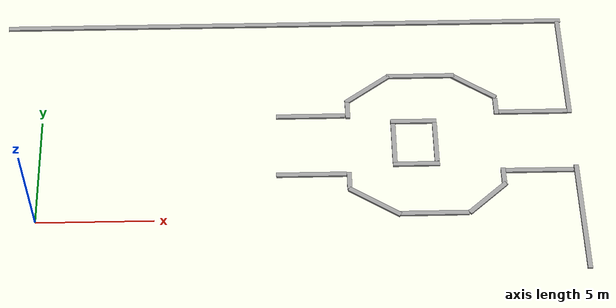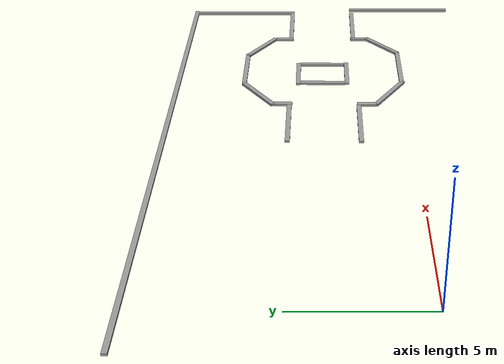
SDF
<sdf version="1.6">
 <model name="brick_box_3x1x3">
  <link name="link_1_clone_0_clone">
   <pose>10.6572 10.185 0.5 0 -0 0</pose>
   <inertial>
    <mass>1</mass>
    <inertia>
     <ixx>0.166667</ixx>
     <ixy>0</ixy>
     <ixz>0</ixz>
     <iyy>0.166667</iyy>
     <iyz>0</iyz>
     <izz>0.166667</izz>
    </inertia>
   </inertial>
   <visual name="visual">
    <pose>0 0 -0.5 0 -0 0</pose>
    <geometry><box><size>25 0.2 0.1</size></box></geometry>
    <material>
     <lighting>1</lighting>
     <script><uri>file://media/materials/scripts/gazebo.material</uri><name>Gazebo/Grey</name></script>
     <ambient>0.3 0.3 0.3 1</ambient>
     <diffuse>0.7 0.7 0.7 1</diffuse>
     <specular>0.01 0.01 0.01 1</specular>
     <emissive>0 0 0 1</emissive>
     <shader type="vertex"><normal_map>__default__</normal_map></shader>
    </material>
   </visual>
   <collision name="collision">
    <pose>0 0 -0.5 0 -0 0</pose>
    <geometry><box><size>25 0.2 0.2</size></box></geometry>
    <surface>
     <friction>
      <ode><mu>1</mu><mu2>1</mu2><fdir1>0 0 0</fdir1><slip1>0</slip1><slip2>0</slip2></ode>
      <torsional>
       <coefficient>1</coefficient>
       <patch_radius>0</patch_radius>
       <surface_radius>0</surface_radius>
       <use_patch_radius>1</use_patch_radius>
       <ode><slip>0</slip></ode>
      </torsional>
     </friction>
     <bounce><restitution_coefficient>0</restitution_coefficient><threshold>1e+06</threshold></bounce>
     <contact>
      <collide_without_contact>0</collide_without_contact>
      <collide_without_contact_bitmask>1</collide_without_contact_bitmask>
      <collide_bitmask>1</collide_bitmask>
      <ode>
       <soft_cfm>0</soft_cfm>
       <soft_erp>0.2</soft_erp>
       <kp>1e+13</kp>
       <kd>1</kd>
       <max_vel>0.01</max_vel>
       <min_depth>0</min_depth>
      </ode>
      <bullet>
       <split_impulse>1</split_impulse>
       <split_impulse_penetration_threshold>-0.01</split_impulse_penetration_threshold>
       <soft_cfm>0</soft_cfm>
       <soft_erp>0.2</soft_erp>
       <kp>1e+13</kp>
       <kd>1</kd>
      </bullet>
     </contact>
    </surface>
   </collision>
  </link>
  <link name="link_1_clone_1">
   <pose>22.9433 -0.208958 0.688101 0 -0 0</pose>
   <inertial>
    <mass>1</mass>
    <inertia>
     <ixx>0.166667</ixx>
     <ixy>0</ixy>
     <ixz>0</ixz>
     <iyy>0.166667</iyy>
     <iyz>0</iyz>
     <izz>0.166667</izz>
    </inertia>
   </inertial>
   <visual name="visual">
    <pose>0 0 -0.5 0 -0 0</pose>
    <geometry><box><size>0.2 5 0.1</size></box></geometry>
    <material>
     <lighting>1</lighting>
     <script><uri>file://media/materials/scripts/gazebo.material</uri><name>Gazebo/Grey</name></script>
     <ambient>0.3 0.3 0.3 1</ambient>
     <diffuse>0.7 0.7 0.7 1</diffuse>
     <specular>0.01 0.01 0.01 1</specular>
     <emissive>0 0 0 1</emissive>
     <shader type="vertex"><normal_map>__default__</normal_map></shader>
    </material>
   </visual>
   <collision name="collision">
    <pose>0 0 -0.5 0 -0 0</pose>
    <geometry><box><size>0.1 5 0.2</size></box></geometry>
    <surface>
     <friction>
      <ode><mu>1</mu><mu2>1</mu2><fdir1>0 0 0</fdir1><slip1>0</slip1><slip2>0</slip2></ode>
      <torsional>
       <coefficient>1</coefficient>
       <patch_radius>0</patch_radius>
       <surface_radius>0</surface_radius>
       <use_patch_radius>1</use_patch_radius>
       <ode><slip>0</slip></ode>
      </torsional>
     </friction>
     <bounce><restitution_coefficient>0</restitution_coefficient><threshold>1e+06</threshold></bounce>
     <contact>
      <collide_without_contact>0</collide_without_contact>
      <collide_without_contact_bitmask>1</collide_without_contact_bitmask>
      <collide_bitmask>1</collide_bitmask>
      <ode>
       <soft_cfm>0</soft_cfm>
       <soft_erp>0.2</soft_erp>
       <kp>1e+13</kp>
       <kd>1</kd>
       <max_vel>0.01</max_vel>
       <min_depth>0</min_depth>
      </ode>
      <bullet>
       <split_impulse>1</split_impulse>
       <split_impulse_penetration_threshold>-0.01</split_impulse_penetration_threshold>
       <soft_cfm>0</soft_cfm>
       <soft_erp>0.2</soft_erp>
       <kp>1e+13</kp>
       <kd>1</kd>
      </bullet>
     </contact>
    </surface>
   </collision>
  </link>
  <link name="link_1_clone_2">
   <pose>23.0117 7.63499 0.5 0 -0 0</pose>
   <inertial>
    <mass>1</mass>
    <inertia>
     <ixx>0.166667</ixx>
     <ixy>0</ixy>
     <ixz>0</ixz>
     <iyy>0.166667</iyy>
     <iyz>0</iyz>
     <izz>0.166667</izz>
    </inertia>
   </inertial>
   <visual name="visual">
    <pose>0 0 -0.5 0 -0 0</pose>
    <geometry><box><size>0.2 5 0.1</size></box></geometry>
    <material>
     <lighting>1</lighting>
     <script><uri>file://media/materials/scripts/gazebo.material</uri><name>Gazebo/Grey</name></script>
     <ambient>0.3 0.3 0.3 1</ambient>
     <diffuse>0.7 0.7 0.7 1</diffuse>
     <specular>0.01 0.01 0.01 1</specular>
     <emissive>0 0 0 1</emissive>
     <shader type="vertex"><normal_map>__default__</normal_map></shader>
    </material>
   </visual>
   <collision name="collision">
    <pose>0 0 -0.5 0 -0 0</pose>
    <geometry><box><size>0.1 5 0.2</size></box></geometry>
    <surface>
     <friction>
      <ode><mu>1</mu><mu2>1</mu2><fdir1>0 0 0</fdir1><slip1>0</slip1><slip2>0</slip2></ode>
      <torsional>
       <coefficient>1</coefficient>
       <patch_radius>0</patch_radius>
       <surface_radius>0</surface_radius>
       <use_patch_radius>1</use_patch_radius>
       <ode><slip>0</slip></ode>
      </torsional>
     </friction>
     <bounce><restitution_coefficient>0</restitution_coefficient><threshold>1e+06</threshold></bounce>
     <contact>
      <collide_without_contact>0</collide_without_contact>
      <collide_without_contact_bitmask>1</collide_without_contact_bitmask>
      <collide_bitmask>1</collide_bitmask>
      <ode>
       <soft_cfm>0</soft_cfm>
       <soft_erp>0.2</soft_erp>
       <kp>1e+13</kp>
       <kd>1</kd>
       <max_vel>0.01</max_vel>
       <min_depth>0</min_depth>
      </ode>
      <bullet>
       <split_impulse>1</split_impulse>
       <split_impulse_penetration_threshold>-0.01</split_impulse_penetration_threshold>
       <soft_cfm>0</soft_cfm>
       <soft_erp>0.2</soft_erp>
       <kp>1e+13</kp>
       <kd>1</kd>
      </bullet>
     </contact>
    </surface>
   </collision>
  </link>
  <link name="link_1_clone_3_clone_0">
   <pose>21.4333 2.1957 0.5 0 -0 0</pose>
   <inertial>
    <mass>1</mass>
    <inertia>
     <ixx>0.166667</ixx>
     <ixy>0</ixy>
     <ixz>0</ixz>
     <iyy>0.166667</iyy>
     <iyz>0</iyz>
     <izz>0.166667</izz>
    </inertia>
   </inertial>
   <visual name="visual">
    <pose>0 0 -0.5 0 -0 0</pose>
    <geometry><box><size>3 0.2 0.1</size></box></geometry>
    <material>
     <lighting>1</lighting>
     <script><uri>file://media/materials/scripts/gazebo.material</uri><name>Gazebo/Grey</name></script>
     <ambient>0.3 0.3 0.3 1</ambient>
     <diffuse>0.7 0.7 0.7 1</diffuse>
     <specular>0.01 0.01 0.01 1</specular>
     <emissive>0 0 0 1</emissive>
     <shader type="vertex"><normal_map>__default__</normal_map></shader>
    </material>
   </visual>
   <collision name="collision">
    <pose>0 0 -0.5 0 -0 0</pose>
    <geometry><box><size>3 0.2 0.2</size></box></geometry>
    <surface>
     <friction>
      <ode><mu>1</mu><mu2>1</mu2><fdir1>0 0 0</fdir1><slip1>0</slip1><slip2>0</slip2></ode>
      <torsional>
       <coefficient>1</coefficient>
       <patch_radius>0</patch_radius>
       <surface_radius>0</surface_radius>
       <use_patch_radius>1</use_patch_radius>
       <ode><slip>0</slip></ode>
      </torsional>
     </friction>
     <bounce><restitution_coefficient>0</restitution_coefficient><threshold>1e+06</threshold></bounce>
     <contact>
      <collide_without_contact>0</collide_without_contact>
      <collide_without_contact_bitmask>1</collide_without_contact_bitmask>
      <collide_bitmask>1</collide_bitmask>
      <ode>
       <soft_cfm>0</soft_cfm>
       <soft_erp>0.2</soft_erp>
       <kp>1e+13</kp>
       <kd>1</kd>
       <max_vel>0.01</max_vel>
       <min_depth>0</min_depth>
      </ode>
      <bullet>
       <split_impulse>1</split_impulse>
       <split_impulse_penetration_threshold>-0.01</split_impulse_penetration_threshold>
       <soft_cfm>0</soft_cfm>
       <soft_erp>0.2</soft_erp>
       <kp>1e+13</kp>
       <kd>1</kd>
      </bullet>
     </contact>
    </surface>
   </collision>
  </link>
  <link name="link_1_clone_3_clone_1">
   <pose>21.421 5.22151 0.5 0 -0 0</pose>
   <inertial>
    <mass>1</mass>
    <inertia>
     <ixx>0.166667</ixx>
     <ixy>0</ixy>
     <ixz>0</ixz>
     <iyy>0.166667</iyy>
     <iyz>0</iyz>
     <izz>0.166667</izz>
    </inertia>
   </inertial>
   <visual name="visual">
    <pose>0 0 -0.5 0 -0 0</pose>
    <geometry><box><size>3 0.2 0.1</size></box></geometry>
    <material>
     <lighting>1</lighting>
     <script><uri>file://media/materials/scripts/gazebo.material</uri><name>Gazebo/Grey</name></script>
     <ambient>0.3 0.3 0.3 1</ambient>
     <diffuse>0.7 0.7 0.7 1</diffuse>
     <specular>0.01 0.01 0.01 1</specular>
     <emissive>0 0 0 1</emissive>
     <shader type="vertex"><normal_map>__default__</normal_map></shader>
    </material>
   </visual>
   <collision name="collision">
    <pose>0 0 -0.5 0 -0 0</pose>
    <geometry><box><size>3 0.2 0.2</size></box></geometry>
    <surface>
     <friction>
      <ode><mu>1</mu><mu2>1</mu2><fdir1>0 0 0</fdir1><slip1>0</slip1><slip2>0</slip2></ode>
      <torsional>
       <coefficient>1</coefficient>
       <patch_radius>0</patch_radius>
       <surface_radius>0</surface_radius>
       <use_patch_radius>1</use_patch_radius>
       <ode><slip>0</slip></ode>
      </torsional>
     </friction>
     <bounce><restitution_coefficient>0</restitution_coefficient><threshold>1e+06</threshold></bounce>
     <contact>
      <collide_without_contact>0</collide_without_contact>
      <collide_without_contact_bitmask>1</collide_without_contact_bitmask>
      <collide_bitmask>1</collide_bitmask>
      <ode>
       <soft_cfm>0</soft_cfm>
       <soft_erp>0.2</soft_erp>
       <kp>1e+13</kp>
       <kd>1</kd>
       <max_vel>0.01</max_vel>
       <min_depth>0</min_depth>
      </ode>
      <bullet>
       <split_impulse>1</split_impulse>
       <split_impulse_penetration_threshold>-0.01</split_impulse_penetration_threshold>
       <soft_cfm>0</soft_cfm>
       <soft_erp>0.2</soft_erp>
       <kp>1e+13</kp>
       <kd>1</kd>
      </bullet>
     </contact>
    </surface>
   </collision>
  </link>
  <link name="link_1_clone_3_clone_10_clone_1_clone_2">
   <pose>13.2467 1.79727 0.5 0 0 -1.56821</pose>
   <inertial>
    <mass>0.239353</mass>
    <inertia>
     <ixx>0.0406036</ixx>
     <ixy>0</ixy>
     <ixz>0</ixz>
     <iyy>0.0210496</iyy>
     <iyz>0</iyz>
     <izz>0.0217608</izz>
    </inertia>
   </inertial>
   <visual name="visual">
    <pose>0 0 -0.5 0 -0 0</pose>
    <geometry><box><size>0.823187 0.203535 0.1</size></box></geometry>
    <material>
     <lighting>1</lighting>
     <script><uri>file://media/materials/scripts/gazebo.material</uri><name>Gazebo/Grey</name></script>
     <ambient>0.3 0.3 0.3 1</ambient>
     <diffuse>0.7 0.7 0.7 1</diffuse>
     <specular>0.01 0.01 0.01 1</specular>
     <emissive>0 0 0 1</emissive>
     <shader type="vertex"><normal_map>__default__</normal_map></shader>
    </material>
   </visual>
   <collision name="collision">
    <pose>0 0 -0.5 0 -0 0</pose>
    <geometry><box><size>0.823187 0.203535 0.2</size></box></geometry>
    <surface>
     <friction>
      <ode><mu>1</mu><mu2>1</mu2><fdir1>0 0 0</fdir1><slip1>0</slip1><slip2>0</slip2></ode>
      <torsional>
       <coefficient>1</coefficient>
       <patch_radius>0</patch_radius>
       <surface_radius>0</surface_radius>
       <use_patch_radius>1</use_patch_radius>
       <ode><slip>0</slip></ode>
      </torsional>
     </friction>
     <bounce><restitution_coefficient>0</restitution_coefficient><threshold>1e+06</threshold></bounce>
     <contact>
      <collide_without_contact>0</collide_without_contact>
      <collide_without_contact_bitmask>1</collide_without_contact_bitmask>
      <collide_bitmask>1</collide_bitmask>
      <ode>
       <soft_cfm>0</soft_cfm>
       <soft_erp>0.2</soft_erp>
       <kp>1e+13</kp>
       <kd>1</kd>
       <max_vel>0.01</max_vel>
       <min_depth>0</min_depth>
      </ode>
      <bullet>
       <split_impulse>1</split_impulse>
       <split_impulse_penetration_threshold>-0.01</split_impulse_penetration_threshold>
       <soft_cfm>0</soft_cfm>
       <soft_erp>0.2</soft_erp>
       <kp>1e+13</kp>
       <kd>1</kd>
      </bullet>
     </contact>
    </surface>
   </collision>
  </link>
  <link name="link_1_clone_3_clone_10_clone_1_clone_3">
   <pose>13.302 5.42831 0.5 0 0 -1.56821</pose>
   <inertial>
    <mass>0.239353</mass>
    <inertia>
     <ixx>0.0406036</ixx>
     <ixy>0</ixy>
     <ixz>0</ixz>
     <iyy>0.0210496</iyy>
     <iyz>0</iyz>
     <izz>0.0217608</izz>
    </inertia>
   </inertial>
   <visual name="visual">
    <pose>0 0 -0.5 0 -0 0</pose>
    <geometry><box><size>0.823187 0.203535 0.1</size></box></geometry>
    <material>
     <lighting>1</lighting>
     <script><uri>file://media/materials/scripts/gazebo.material</uri><name>Gazebo/Grey</name></script>
     <ambient>0.3 0.3 0.3 1</ambient>
     <diffuse>0.7 0.7 0.7 1</diffuse>
     <specular>0.01 0.01 0.01 1</specular>
     <emissive>0 0 0 1</emissive>
     <shader type="vertex"><normal_map>__default__</normal_map></shader>
    </material>
   </visual>
   <collision name="collision">
    <pose>0 0 -0.5 0 -0 0</pose>
    <geometry><box><size>0.823187 0.203535 0.2</size></box></geometry>
    <surface>
     <friction>
      <ode><mu>1</mu><mu2>1</mu2><fdir1>0 0 0</fdir1><slip1>0</slip1><slip2>0</slip2></ode>
      <torsional>
       <coefficient>1</coefficient>
       <patch_radius>0</patch_radius>
       <surface_radius>0</surface_radius>
       <use_patch_radius>1</use_patch_radius>
       <ode><slip>0</slip></ode>
      </torsional>
     </friction>
     <bounce><restitution_coefficient>0</restitution_coefficient><threshold>1e+06</threshold></bounce>
     <contact>
      <collide_without_contact>0</collide_without_contact>
      <collide_without_contact_bitmask>1</collide_without_contact_bitmask>
      <collide_bitmask>1</collide_bitmask>
      <ode>
       <soft_cfm>0</soft_cfm>
       <soft_erp>0.2</soft_erp>
       <kp>1e+13</kp>
       <kd>1</kd>
       <max_vel>0.01</max_vel>
       <min_depth>0</min_depth>
      </ode>
      <bullet>
       <split_impulse>1</split_impulse>
       <split_impulse_penetration_threshold>-0.01</split_impulse_penetration_threshold>
       <soft_cfm>0</soft_cfm>
       <soft_erp>0.2</soft_erp>
       <kp>1e+13</kp>
       <kd>1</kd>
      </bullet>
     </contact>
    </surface>
   </collision>
  </link>
  <link name="link_1_clone_3_clone_10_clone_1_clone_4">
   <pose>19.8376 1.90733 0.5 0 0 -1.56821</pose>
   <inertial>
    <mass>0.239353</mass>
    <inertia>
     <ixx>0.0406036</ixx>
     <ixy>0</ixy>
     <ixz>0</ixz>
     <iyy>0.0210496</iyy>
     <iyz>0</iyz>
     <izz>0.0217608</izz>
    </inertia>
   </inertial>
   <visual name="visual">
    <pose>0 0 -0.5 0 -0 0</pose>
    <geometry><box><size>0.823187 0.203535 0.1</size></box></geometry>
    <material>
     <lighting>1</lighting>
     <script><uri>file://media/materials/scripts/gazebo.material</uri><name>Gazebo/Grey</name></script>
     <ambient>0.3 0.3 0.3 1</ambient>
     <diffuse>0.7 0.7 0.7 1</diffuse>
     <specular>0.01 0.01 0.01 1</specular>
     <emissive>0 0 0 1</emissive>
     <shader type="vertex"><normal_map>__default__</normal_map></shader>
    </material>
   </visual>
   <collision name="collision">
    <pose>0 0 -0.5 0 -0 0</pose>
    <geometry><box><size>0.823187 0.203535 0.2</size></box></geometry>
    <surface>
     <friction>
      <ode><mu>1</mu><mu2>1</mu2><fdir1>0 0 0</fdir1><slip1>0</slip1><slip2>0</slip2></ode>
      <torsional>
       <coefficient>1</coefficient>
       <patch_radius>0</patch_radius>
       <surface_radius>0</surface_radius>
       <use_patch_radius>1</use_patch_radius>
       <ode><slip>0</slip></ode>
      </torsional>
     </friction>
     <bounce><restitution_coefficient>0</restitution_coefficient><threshold>1e+06</threshold></bounce>
     <contact>
      <collide_without_contact>0</collide_without_contact>
      <collide_without_contact_bitmask>1</collide_without_contact_bitmask>
      <collide_bitmask>1</collide_bitmask>
      <ode>
       <soft_cfm>0</soft_cfm>
       <soft_erp>0.2</soft_erp>
       <kp>1e+13</kp>
       <kd>1</kd>
       <max_vel>0.01</max_vel>
       <min_depth>0</min_depth>
      </ode>
      <bullet>
       <split_impulse>1</split_impulse>
       <split_impulse_penetration_threshold>-0.01</split_impulse_penetration_threshold>
       <soft_cfm>0</soft_cfm>
       <soft_erp>0.2</soft_erp>
       <kp>1e+13</kp>
       <kd>1</kd>
      </bullet>
     </contact>
    </surface>
   </collision>
  </link>
  <link name="link_1_clone_3_clone_10_clone_1_clone_5">
   <pose>19.8123 5.5335 0.5 0 0 -1.56821</pose>
   <inertial>
    <mass>0.239353</mass>
    <inertia>
     <ixx>0.0406036</ixx>
     <ixy>0</ixy>
     <ixz>0</ixz>
     <iyy>0.0210496</iyy>
     <iyz>0</iyz>
     <izz>0.0217608</izz>
    </inertia>
   </inertial>
   <visual name="visual">
    <pose>0 0 -0.5 0 -0 0</pose>
    <geometry><box><size>0.823187 0.203535 0.1</size></box></geometry>
    <material>
     <lighting>1</lighting>
     <script><uri>file://media/materials/scripts/gazebo.material</uri><name>Gazebo/Grey</name></script>
     <ambient>0.3 0.3 0.3 1</ambient>
     <diffuse>0.7 0.7 0.7 1</diffuse>
     <specular>0.01 0.01 0.01 1</specular>
     <emissive>0 0 0 1</emissive>
     <shader type="vertex"><normal_map>__default__</normal_map></shader>
    </material>
   </visual>
   <collision name="collision">
    <pose>0 0 -0.5 0 -0 0</pose>
    <geometry><box><size>0.823187 0.203535 0.2</size></box></geometry>
    <surface>
     <friction>
      <ode><mu>1</mu><mu2>1</mu2><fdir1>0 0 0</fdir1><slip1>0</slip1><slip2>0</slip2></ode>
      <torsional>
       <coefficient>1</coefficient>
       <patch_radius>0</patch_radius>
       <surface_radius>0</surface_radius>
       <use_patch_radius>1</use_patch_radius>
       <ode><slip>0</slip></ode>
      </torsional>
     </friction>
     <bounce><restitution_coefficient>0</restitution_coefficient><threshold>1e+06</threshold></bounce>
     <contact>
      <collide_without_contact>0</collide_without_contact>
      <collide_without_contact_bitmask>1</collide_without_contact_bitmask>
      <collide_bitmask>1</collide_bitmask>
      <ode>
       <soft_cfm>0</soft_cfm>
       <soft_erp>0.2</soft_erp>
       <kp>1e+13</kp>
       <kd>1</kd>
       <max_vel>0.01</max_vel>
       <min_depth>0</min_depth>
      </ode>
      <bullet>
       <split_impulse>1</split_impulse>
       <split_impulse_penetration_threshold>-0.01</split_impulse_penetration_threshold>
       <soft_cfm>0</soft_cfm>
       <soft_erp>0.2</soft_erp>
       <kp>1e+13</kp>
       <kd>1</kd>
      </bullet>
     </contact>
    </surface>
   </collision>
  </link>
  <link name="link_1_clone_3_clone_10_clone_4">
   <pose>18.8978 6.62107 0.5 0 0 -0.579619</pose>
   <inertial>
    <mass>0.66633</mass>
    <inertia>
     <ixx>0.113036</ixx>
     <ixy>0</ixy>
     <ixz>0</ixz>
     <iyy>0.0793326</iyy>
     <iyz>0</iyz>
     <izz>0.0813132</izz>
    </inertia>
   </inertial>
   <visual name="visual">
    <pose>0 0 -0.5 0 -0 0</pose>
    <geometry><box><size>2.29164 0.203535 0.1</size></box></geometry>
    <material>
     <lighting>1</lighting>
     <script><uri>file://media/materials/scripts/gazebo.material</uri><name>Gazebo/Grey</name></script>
     <ambient>0.3 0.3 0.3 1</ambient>
     <diffuse>0.7 0.7 0.7 1</diffuse>
     <specular>0.01 0.01 0.01 1</specular>
     <emissive>0 0 0 1</emissive>
     <shader type="vertex"><normal_map>__default__</normal_map></shader>
    </material>
   </visual>
   <collision name="collision">
    <pose>0 0 -0.5 0 -0 0</pose>
    <geometry><box><size>2.29164 0.203535 0.2</size></box></geometry>
    <surface>
     <friction>
      <ode><mu>1</mu><mu2>1</mu2><fdir1>0 0 0</fdir1><slip1>0</slip1><slip2>0</slip2></ode>
      <torsional>
       <coefficient>1</coefficient>
       <patch_radius>0</patch_radius>
       <surface_radius>0</surface_radius>
       <use_patch_radius>1</use_patch_radius>
       <ode><slip>0</slip></ode>
      </torsional>
     </friction>
     <bounce><restitution_coefficient>0</restitution_coefficient><threshold>1e+06</threshold></bounce>
     <contact>
      <collide_without_contact>0</collide_without_contact>
      <collide_without_contact_bitmask>1</collide_without_contact_bitmask>
      <collide_bitmask>1</collide_bitmask>
      <ode>
       <soft_cfm>0</soft_cfm>
       <soft_erp>0.2</soft_erp>
       <kp>1e+13</kp>
       <kd>1</kd>
       <max_vel>0.01</max_vel>
       <min_depth>0</min_depth>
      </ode>
      <bullet>
       <split_impulse>1</split_impulse>
       <split_impulse_penetration_threshold>-0.01</split_impulse_penetration_threshold>
       <soft_cfm>0</soft_cfm>
       <soft_erp>0.2</soft_erp>
       <kp>1e+13</kp>
       <kd>1</kd>
      </bullet>
     </contact>
    </surface>
   </collision>
  </link>
  <link name="link_1_clone_3_clone_10_clone_4_clone">
   <pose>14.2781 0.747531 0.5 0 0 -0.55659</pose>
   <inertial>
    <mass>0.726749</mass>
    <inertia>
     <ixx>0.123285</ixx>
     <ixy>0</ixy>
     <ixz>0</ixz>
     <iyy>0.0914481</iyy>
     <iyz>0</iyz>
     <izz>0.0936075</izz>
    </inertia>
   </inertial>
   <visual name="visual">
    <pose>0 0 -0.5 0 -0 0</pose>
    <geometry><box><size>2.49943 0.203535 0.1</size></box></geometry>
    <material>
     <lighting>1</lighting>
     <script><uri>file://media/materials/scripts/gazebo.material</uri><name>Gazebo/Grey</name></script>
     <ambient>0.3 0.3 0.3 1</ambient>
     <diffuse>0.7 0.7 0.7 1</diffuse>
     <specular>0.01 0.01 0.01 1</specular>
     <emissive>0 0 0 1</emissive>
     <shader type="vertex"><normal_map>__default__</normal_map></shader>
    </material>
   </visual>
   <collision name="collision">
    <pose>0 0 -0.5 0 -0 0</pose>
    <geometry><box><size>2.49943 0.203535 0.2</size></box></geometry>
    <surface>
     <friction>
      <ode><mu>1</mu><mu2>1</mu2><fdir1>0 0 0</fdir1><slip1>0</slip1><slip2>0</slip2></ode>
      <torsional>
       <coefficient>1</coefficient>
       <patch_radius>0</patch_radius>
       <surface_radius>0</surface_radius>
       <use_patch_radius>1</use_patch_radius>
       <ode><slip>0</slip></ode>
      </torsional>
     </friction>
     <bounce><restitution_coefficient>0</restitution_coefficient><threshold>1e+06</threshold></bounce>
     <contact>
      <collide_without_contact>0</collide_without_contact>
      <collide_without_contact_bitmask>1</collide_without_contact_bitmask>
      <collide_bitmask>1</collide_bitmask>
      <ode>
       <soft_cfm>0</soft_cfm>
       <soft_erp>0.2</soft_erp>
       <kp>1e+13</kp>
       <kd>1</kd>
       <max_vel>0.01</max_vel>
       <min_depth>0</min_depth>
      </ode>
      <bullet>
       <split_impulse>1</split_impulse>
       <split_impulse_penetration_threshold>-0.01</split_impulse_penetration_threshold>
       <soft_cfm>0</soft_cfm>
       <soft_erp>0.2</soft_erp>
       <kp>1e+13</kp>
       <kd>1</kd>
      </bullet>
     </contact>
    </surface>
   </collision>
  </link>
  <link name="link_1_clone_3_clone_10_clone_4_clone_clone">
   <pose>14.2088 6.53336 0.5 0 0 -2.52567</pose>
   <inertial>
    <mass>0.693051</mass>
    <inertia>
     <ixx>0.117568</ixx>
     <ixy>0</ixy>
     <ixz>0</ixz>
     <iyy>0.0845397</iyy>
     <iyz>0</iyz>
     <izz>0.086599</izz>
    </inertia>
   </inertial>
   <visual name="visual">
    <pose>0 0 -0.5 0 -0 0</pose>
    <geometry><box><size>2.38354 0.203535 0.1</size></box></geometry>
    <material>
     <lighting>1</lighting>
     <script><uri>file://media/materials/scripts/gazebo.material</uri><name>Gazebo/Grey</name></script>
     <ambient>0.3 0.3 0.3 1</ambient>
     <diffuse>0.7 0.7 0.7 1</diffuse>
     <specular>0.01 0.01 0.01 1</specular>
     <emissive>0 0 0 1</emissive>
     <shader type="vertex"><normal_map>__default__</normal_map></shader>
    </material>
   </visual>
   <collision name="collision">
    <pose>0 0 -0.5 0 -0 0</pose>
    <geometry><box><size>2.38354 0.203535 0.2</size></box></geometry>
    <surface>
     <friction>
      <ode><mu>1</mu><mu2>1</mu2><fdir1>0 0 0</fdir1><slip1>0</slip1><slip2>0</slip2></ode>
      <torsional>
       <coefficient>1</coefficient>
       <patch_radius>0</patch_radius>
       <surface_radius>0</surface_radius>
       <use_patch_radius>1</use_patch_radius>
       <ode><slip>0</slip></ode>
      </torsional>
     </friction>
     <bounce><restitution_coefficient>0</restitution_coefficient><threshold>1e+06</threshold></bounce>
     <contact>
      <collide_without_contact>0</collide_without_contact>
      <collide_without_contact_bitmask>1</collide_without_contact_bitmask>
      <collide_bitmask>1</collide_bitmask>
      <ode>
       <soft_cfm>0</soft_cfm>
       <soft_erp>0.2</soft_erp>
       <kp>1e+13</kp>
       <kd>1</kd>
       <max_vel>0.01</max_vel>
       <min_depth>0</min_depth>
      </ode>
      <bullet>
       <split_impulse>1</split_impulse>
       <split_impulse_penetration_threshold>-0.01</split_impulse_penetration_threshold>
       <soft_cfm>0</soft_cfm>
       <soft_erp>0.2</soft_erp>
       <kp>1e+13</kp>
       <kd>1</kd>
      </bullet>
     </contact>
    </surface>
   </collision>
  </link>
  <link name="link_1_clone_3_clone_10_clone_4_clone_clone_clone">
   <pose>19.0759 0.851415 0.5 0 0 -2.43222</pose>
   <inertial>
    <mass>0.638044</mass>
    <inertia>
     <ixx>0.108237</ixx>
     <ixy>0</ixy>
     <ixz>0</ixz>
     <iyy>0.0740707</iyy>
     <iyz>0</iyz>
     <izz>0.0759667</izz>
    </inertia>
   </inertial>
   <visual name="visual">
    <pose>0 0 -0.5 0 -0 0</pose>
    <geometry><box><size>2.19436 0.203535 0.1</size></box></geometry>
    <material>
     <lighting>1</lighting>
     <script><uri>file://media/materials/scripts/gazebo.material</uri><name>Gazebo/Grey</name></script>
     <ambient>0.3 0.3 0.3 1</ambient>
     <diffuse>0.7 0.7 0.7 1</diffuse>
     <specular>0.01 0.01 0.01 1</specular>
     <emissive>0 0 0 1</emissive>
     <shader type="vertex"><normal_map>__default__</normal_map></shader>
    </material>
   </visual>
   <collision name="collision">
    <pose>0 0 -0.5 0 -0 0</pose>
    <geometry><box><size>2.19436 0.203535 0.2</size></box></geometry>
    <surface>
     <friction>
      <ode><mu>1</mu><mu2>1</mu2><fdir1>0 0 0</fdir1><slip1>0</slip1><slip2>0</slip2></ode>
      <torsional>
       <coefficient>1</coefficient>
       <patch_radius>0</patch_radius>
       <surface_radius>0</surface_radius>
       <use_patch_radius>1</use_patch_radius>
       <ode><slip>0</slip></ode>
      </torsional>
     </friction>
     <bounce><restitution_coefficient>0</restitution_coefficient><threshold>1e+06</threshold></bounce>
     <contact>
      <collide_without_contact>0</collide_without_contact>
      <collide_without_contact_bitmask>1</collide_without_contact_bitmask>
      <collide_bitmask>1</collide_bitmask>
      <ode>
       <soft_cfm>0</soft_cfm>
       <soft_erp>0.2</soft_erp>
       <kp>1e+13</kp>
       <kd>1</kd>
       <max_vel>0.01</max_vel>
       <min_depth>0</min_depth>
      </ode>
      <bullet>
       <split_impulse>1</split_impulse>
       <split_impulse_penetration_threshold>-0.01</split_impulse_penetration_threshold>
       <soft_cfm>0</soft_cfm>
       <soft_erp>0.2</soft_erp>
       <kp>1e+13</kp>
       <kd>1</kd>
      </bullet>
     </contact>
    </surface>
   </collision>
  </link>
  <link name="link_1_clone_3_clone_4">
   <pose>11.6739 5.14783 0.5 0 -0 0</pose>
   <inertial>
    <mass>1</mass>
    <inertia>
     <ixx>0.166667</ixx>
     <ixy>0</ixy>
     <ixz>0</ixz>
     <iyy>0.166667</iyy>
     <iyz>0</iyz>
     <izz>0.166667</izz>
    </inertia>
   </inertial>
   <visual name="visual">
    <pose>0 0 -0.5 0 -0 0</pose>
    <geometry><box><size>3 0.2 0.1</size></box></geometry>
    <material>
     <lighting>1</lighting>
     <script><uri>file://media/materials/scripts/gazebo.material</uri><name>Gazebo/Grey</name></script>
     <ambient>0.3 0.3 0.3 1</ambient>
     <diffuse>0.7 0.7 0.7 1</diffuse>
     <specular>0.01 0.01 0.01 1</specular>
     <emissive>0 0 0 1</emissive>
     <shader type="vertex"><normal_map>__default__</normal_map></shader>
    </material>
   </visual>
   <collision name="collision">
    <pose>0 0 -0.5 0 -0 0</pose>
    <geometry><box><size>3 0.2 0.2</size></box></geometry>
    <surface>
     <friction>
      <ode><mu>1</mu><mu2>1</mu2><fdir1>0 0 0</fdir1><slip1>0</slip1><slip2>0</slip2></ode>
      <torsional>
       <coefficient>1</coefficient>
       <patch_radius>0</patch_radius>
       <surface_radius>0</surface_radius>
       <use_patch_radius>1</use_patch_radius>
       <ode><slip>0</slip></ode>
      </torsional>
     </friction>
     <bounce><restitution_coefficient>0</restitution_coefficient><threshold>1e+06</threshold></bounce>
     <contact>
      <collide_without_contact>0</collide_without_contact>
      <collide_without_contact_bitmask>1</collide_without_contact_bitmask>
      <collide_bitmask>1</collide_bitmask>
      <ode>
       <soft_cfm>0</soft_cfm>
       <soft_erp>0.2</soft_erp>
       <kp>1e+13</kp>
       <kd>1</kd>
       <max_vel>0.01</max_vel>
       <min_depth>0</min_depth>
      </ode>
      <bullet>
       <split_impulse>1</split_impulse>
       <split_impulse_penetration_threshold>-0.01</split_impulse_penetration_threshold>
       <soft_cfm>0</soft_cfm>
       <soft_erp>0.2</soft_erp>
       <kp>1e+13</kp>
       <kd>1</kd>
      </bullet>
     </contact>
    </surface>
   </collision>
  </link>
  <link name="link_1_clone_3_clone_5">
   <pose>11.6368 2.14783 0.5 0 -0 0</pose>
   <inertial>
    <mass>1</mass>
    <inertia>
     <ixx>0.166667</ixx>
     <ixy>0</ixy>
     <ixz>0</ixz>
     <iyy>0.166667</iyy>
     <iyz>0</iyz>
     <izz>0.166667</izz>
    </inertia>
   </inertial>
   <visual name="visual">
    <pose>0 0 -0.5 0 -0 0</pose>
    <geometry><box><size>3 0.2 0.1</size></box></geometry>
    <material>
     <lighting>1</lighting>
     <script><uri>file://media/materials/scripts/gazebo.material</uri><name>Gazebo/Grey</name></script>
     <ambient>0.3 0.3 0.3 1</ambient>
     <diffuse>0.7 0.7 0.7 1</diffuse>
     <specular>0.01 0.01 0.01 1</specular>
     <emissive>0 0 0 1</emissive>
     <shader type="vertex"><normal_map>__default__</normal_map></shader>
    </material>
   </visual>
   <collision name="collision">
    <pose>0 0 -0.5 0 -0 0</pose>
    <geometry><box><size>3 0.2 0.2</size></box></geometry>
    <surface>
     <friction>
      <ode><mu>1</mu><mu2>1</mu2><fdir1>0 0 0</fdir1><slip1>0</slip1><slip2>0</slip2></ode>
      <torsional>
       <coefficient>1</coefficient>
       <patch_radius>0</patch_radius>
       <surface_radius>0</surface_radius>
       <use_patch_radius>1</use_patch_radius>
       <ode><slip>0</slip></ode>
      </torsional>
     </friction>
     <bounce><restitution_coefficient>0</restitution_coefficient><threshold>1e+06</threshold></bounce>
     <contact>
      <collide_without_contact>0</collide_without_contact>
      <collide_without_contact_bitmask>1</collide_without_contact_bitmask>
      <collide_bitmask>1</collide_bitmask>
      <ode>
       <soft_cfm>0</soft_cfm>
       <soft_erp>0.2</soft_erp>
       <kp>1e+13</kp>
       <kd>1</kd>
       <max_vel>0.01</max_vel>
       <min_depth>0</min_depth>
      </ode>
      <bullet>
       <split_impulse>1</split_impulse>
       <split_impulse_penetration_threshold>-0.01</split_impulse_penetration_threshold>
       <soft_cfm>0</soft_cfm>
       <soft_erp>0.2</soft_erp>
       <kp>1e+13</kp>
       <kd>1</kd>
      </bullet>
     </contact>
    </surface>
   </collision>
  </link>
  <link name="link_1_clone_3_clone_6_clone_clone_0">
   <pose>16.1511 2.60584 0.5 0 -0 0</pose>
   <inertial>
    <mass>0.667428</mass>
    <inertia>
     <ixx>0.111238</ixx>
     <ixy>0</ixy>
     <ixz>0</ixz>
     <iyy>0.0803952</iyy>
     <iyz>0</iyz>
     <izz>0.0803952</izz>
    </inertia>
   </inertial>
   <visual name="visual">
    <pose>0 0 -0.5 0 -0 0</pose>
    <geometry><box><size>2.00229 0.2 0.1</size></box></geometry>
    <material>
     <lighting>1</lighting>
     <script><uri>file://media/materials/scripts/gazebo.material</uri><name>Gazebo/Grey</name></script>
     <ambient>0.3 0.3 0.3 1</ambient>
     <diffuse>0.7 0.7 0.7 1</diffuse>
     <specular>0.01 0.01 0.01 1</specular>
     <emissive>0 0 0 1</emissive>
     <shader type="vertex"><normal_map>__default__</normal_map></shader>
    </material>
   </visual>
   <collision name="collision">
    <pose>0 0 -0.5 0 -0 0</pose>
    <geometry><box><size>2.00229 0.2 0.2</size></box></geometry>
    <surface>
     <friction>
      <ode><mu>1</mu><mu2>1</mu2><fdir1>0 0 0</fdir1><slip1>0</slip1><slip2>0</slip2></ode>
      <torsional>
       <coefficient>1</coefficient>
       <patch_radius>0</patch_radius>
       <surface_radius>0</surface_radius>
       <use_patch_radius>1</use_patch_radius>
       <ode><slip>0</slip></ode>
      </torsional>
     </friction>
     <bounce><restitution_coefficient>0</restitution_coefficient><threshold>1e+06</threshold></bounce>
     <contact>
      <collide_without_contact>0</collide_without_contact>
      <collide_without_contact_bitmask>1</collide_without_contact_bitmask>
      <collide_bitmask>1</collide_bitmask>
      <ode>
       <soft_cfm>0</soft_cfm>
       <soft_erp>0.2</soft_erp>
       <kp>1e+13</kp>
       <kd>1</kd>
       <max_vel>0.01</max_vel>
       <min_depth>0</min_depth>
      </ode>
      <bullet>
       <split_impulse>1</split_impulse>
       <split_impulse_penetration_threshold>-0.01</split_impulse_penetration_threshold>
       <soft_cfm>0</soft_cfm>
       <soft_erp>0.2</soft_erp>
       <kp>1e+13</kp>
       <kd>1</kd>
      </bullet>
     </contact>
    </surface>
   </collision>
  </link>
  <link name="link_1_clone_3_clone_6_clone_clone_1">
   <pose>16.1511 4.7991 0.5 0 -0 0</pose>
   <inertial>
    <mass>0.667428</mass>
    <inertia>
     <ixx>0.111238</ixx>
     <ixy>0</ixy>
     <ixz>0</ixz>
     <iyy>0.0803952</iyy>
     <iyz>0</iyz>
     <izz>0.0803952</izz>
    </inertia>
   </inertial>
   <visual name="visual">
    <pose>0 0 -0.5 0 -0 0</pose>
    <geometry><box><size>2.00229 0.2 0.1</size></box></geometry>
    <material>
     <lighting>1</lighting>
     <script><uri>file://media/materials/scripts/gazebo.material</uri><name>Gazebo/Grey</name></script>
     <ambient>0.3 0.3 0.3 1</ambient>
     <diffuse>0.7 0.7 0.7 1</diffuse>
     <specular>0.01 0.01 0.01 1</specular>
     <emissive>0 0 0 1</emissive>
     <shader type="vertex"><normal_map>__default__</normal_map></shader>
    </material>
   </visual>
   <collision name="collision">
    <pose>0 0 -0.5 0 -0 0</pose>
    <geometry><box><size>2.00229 0.2 0.2</size></box></geometry>
    <surface>
     <friction>
      <ode><mu>1</mu><mu2>1</mu2><fdir1>0 0 0</fdir1><slip1>0</slip1><slip2>0</slip2></ode>
      <torsional>
       <coefficient>1</coefficient>
       <patch_radius>0</patch_radius>
       <surface_radius>0</surface_radius>
       <use_patch_radius>1</use_patch_radius>
       <ode><slip>0</slip></ode>
      </torsional>
     </friction>
     <bounce><restitution_coefficient>0</restitution_coefficient><threshold>1e+06</threshold></bounce>
     <contact>
      <collide_without_contact>0</collide_without_contact>
      <collide_without_contact_bitmask>1</collide_without_contact_bitmask>
      <collide_bitmask>1</collide_bitmask>
      <ode>
       <soft_cfm>0</soft_cfm>
       <soft_erp>0.2</soft_erp>
       <kp>1e+13</kp>
       <kd>1</kd>
       <max_vel>0.01</max_vel>
       <min_depth>0</min_depth>
      </ode>
      <bullet>
       <split_impulse>1</split_impulse>
       <split_impulse_penetration_threshold>-0.01</split_impulse_penetration_threshold>
       <soft_cfm>0</soft_cfm>
       <soft_erp>0.2</soft_erp>
       <kp>1e+13</kp>
       <kd>1</kd>
      </bullet>
     </contact>
    </surface>
   </collision>
  </link>
  <link name="link_1_clone_3_clone_6_clone_clone_clone_clone">
   <pose>15.2461 3.68097 0.5 0 0 -1.57783</pose>
   <inertial>
    <mass>0.667428</mass>
    <inertia>
     <ixx>0.111238</ixx>
     <ixy>0</ixy>
     <ixz>0</ixz>
     <iyy>0.0803952</iyy>
     <iyz>0</iyz>
     <izz>0.0803952</izz>
    </inertia>
   </inertial>
   <visual name="visual">
    <pose>0 0 -0.5 0 -0 0</pose>
    <geometry><box><size>2.00229 0.2 0.1</size></box></geometry>
    <material>
     <lighting>1</lighting>
     <script><uri>file://media/materials/scripts/gazebo.material</uri><name>Gazebo/Grey</name></script>
     <ambient>0.3 0.3 0.3 1</ambient>
     <diffuse>0.7 0.7 0.7 1</diffuse>
     <specular>0.01 0.01 0.01 1</specular>
     <emissive>0 0 0 1</emissive>
     <shader type="vertex"><normal_map>__default__</normal_map></shader>
    </material>
   </visual>
   <collision name="collision">
    <pose>0 0 -0.5 0 -0 0</pose>
    <geometry><box><size>2.00229 0.2 0.2</size></box></geometry>
    <surface>
     <friction>
      <ode><mu>1</mu><mu2>1</mu2><fdir1>0 0 0</fdir1><slip1>0</slip1><slip2>0</slip2></ode>
      <torsional>
       <coefficient>1</coefficient>
       <patch_radius>0</patch_radius>
       <surface_radius>0</surface_radius>
       <use_patch_radius>1</use_patch_radius>
       <ode><slip>0</slip></ode>
      </torsional>
     </friction>
     <bounce><restitution_coefficient>0</restitution_coefficient><threshold>1e+06</threshold></bounce>
     <contact>
      <collide_without_contact>0</collide_without_contact>
      <collide_without_contact_bitmask>1</collide_without_contact_bitmask>
      <collide_bitmask>1</collide_bitmask>
      <ode>
       <soft_cfm>0</soft_cfm>
       <soft_erp>0.2</soft_erp>
       <kp>1e+13</kp>
       <kd>1</kd>
       <max_vel>0.01</max_vel>
       <min_depth>0</min_depth>
      </ode>
      <bullet>
       <split_impulse>1</split_impulse>
       <split_impulse_penetration_threshold>-0.01</split_impulse_penetration_threshold>
       <soft_cfm>0</soft_cfm>
       <soft_erp>0.2</soft_erp>
       <kp>1e+13</kp>
       <kd>1</kd>
      </bullet>
     </contact>
    </surface>
   </collision>
  </link>
  <link name="link_1_clone_3_clone_6_clone_clone_clone_clone_clone">
   <pose>17.0548 3.71598 0.5 0 0 -1.57783</pose>
   <inertial>
    <mass>0.667428</mass>
    <inertia>
     <ixx>0.111238</ixx>
     <ixy>0</ixy>
     <ixz>0</ixz>
     <iyy>0.0803952</iyy>
     <iyz>0</iyz>
     <izz>0.0803952</izz>
    </inertia>
   </inertial>
   <visual name="visual">
    <pose>0 0 -0.5 0 -0 0</pose>
    <geometry><box><size>2.00229 0.2 0.1</size></box></geometry>
    <material>
     <lighting>1</lighting>
     <script><uri>file://media/materials/scripts/gazebo.material</uri><name>Gazebo/Grey</name></script>
     <ambient>0.3 0.3 0.3 1</ambient>
     <diffuse>0.7 0.7 0.7 1</diffuse>
     <specular>0.01 0.01 0.01 1</specular>
     <emissive>0 0 0 1</emissive>
     <shader type="vertex"><normal_map>__default__</normal_map></shader>
    </material>
   </visual>
   <collision name="collision">
    <pose>0 0 -0.5 0 -0 0</pose>
    <geometry><box><size>2.00229 0.2 0.2</size></box></geometry>
    <surface>
     <friction>
      <ode><mu>1</mu><mu2>1</mu2><fdir1>0 0 0</fdir1><slip1>0</slip1><slip2>0</slip2></ode>
      <torsional>
       <coefficient>1</coefficient>
       <patch_radius>0</patch_radius>
       <surface_radius>0</surface_radius>
       <use_patch_radius>1</use_patch_radius>
       <ode><slip>0</slip></ode>
      </torsional>
     </friction>
     <bounce><restitution_coefficient>0</restitution_coefficient><threshold>1e+06</threshold></bounce>
     <contact>
      <collide_without_contact>0</collide_without_contact>
      <collide_without_contact_bitmask>1</collide_without_contact_bitmask>
      <collide_bitmask>1</collide_bitmask>
      <ode>
       <soft_cfm>0</soft_cfm>
       <soft_erp>0.2</soft_erp>
       <kp>1e+13</kp>
       <kd>1</kd>
       <max_vel>0.01</max_vel>
       <min_depth>0</min_depth>
      </ode>
      <bullet>
       <split_impulse>1</split_impulse>
       <split_impulse_penetration_threshold>-0.01</split_impulse_penetration_threshold>
       <soft_cfm>0</soft_cfm>
       <soft_erp>0.2</soft_erp>
       <kp>1e+13</kp>
       <kd>1</kd>
      </bullet>
     </contact>
    </surface>
   </collision>
  </link>
  <link name="link_1_clone_3_clone_8">
   <pose>16.7166 0.14783 0.5 0 -0 0</pose>
   <inertial>
    <mass>1</mass>
    <inertia>
     <ixx>0.166667</ixx>
     <ixy>0</ixy>
     <ixz>0</ixz>
     <iyy>0.166667</iyy>
     <iyz>0</iyz>
     <izz>0.166667</izz>
    </inertia>
   </inertial>
   <visual name="visual">
    <pose>0 0 -0.5 0 -0 0</pose>
    <geometry><box><size>3 0.2 0.1</size></box></geometry>
    <material>
     <lighting>1</lighting>
     <script><uri>file://media/materials/scripts/gazebo.material</uri><name>Gazebo/Grey</name></script>
     <ambient>0.3 0.3 0.3 1</ambient>
     <diffuse>0.7 0.7 0.7 1</diffuse>
     <specular>0.01 0.01 0.01 1</specular>
     <emissive>0 0 0 1</emissive>
     <shader type="vertex"><normal_map>__default__</normal_map></shader>
    </material>
   </visual>
   <collision name="collision">
    <pose>0 0 -0.5 0 -0 0</pose>
    <geometry><box><size>3 0.2 0.2</size></box></geometry>
    <surface>
     <friction>
      <ode><mu>1</mu><mu2>1</mu2><fdir1>0 0 0</fdir1><slip1>0</slip1><slip2>0</slip2></ode>
      <torsional>
       <coefficient>1</coefficient>
       <patch_radius>0</patch_radius>
       <surface_radius>0</surface_radius>
       <use_patch_radius>1</use_patch_radius>
       <ode><slip>0</slip></ode>
      </torsional>
     </friction>
     <bounce><restitution_coefficient>0</restitution_coefficient><threshold>1e+06</threshold></bounce>
     <contact>
      <collide_without_contact>0</collide_without_contact>
      <collide_without_contact_bitmask>1</collide_without_contact_bitmask>
      <collide_bitmask>1</collide_bitmask>
      <ode>
       <soft_cfm>0</soft_cfm>
       <soft_erp>0.2</soft_erp>
       <kp>1e+13</kp>
       <kd>1</kd>
       <max_vel>0.01</max_vel>
       <min_depth>0</min_depth>
      </ode>
      <bullet>
       <split_impulse>1</split_impulse>
       <split_impulse_penetration_threshold>-0.01</split_impulse_penetration_threshold>
       <soft_cfm>0</soft_cfm>
       <soft_erp>0.2</soft_erp>
       <kp>1e+13</kp>
       <kd>1</kd>
      </bullet>
     </contact>
    </surface>
   </collision>
  </link>
  <link name="link_1_clone_3_clone_9">
   <pose>16.6024 7.21797 0.5 0 -0 0</pose>
   <inertial>
    <mass>1</mass>
    <inertia>
     <ixx>0.166667</ixx>
     <ixy>0</ixy>
     <ixz>0</ixz>
     <iyy>0.166667</iyy>
     <iyz>0</iyz>
     <izz>0.166667</izz>
    </inertia>
   </inertial>
   <visual name="visual">
    <pose>0 0 -0.5 0 -0 0</pose>
    <geometry><box><size>3 0.2 0.1</size></box></geometry>
    <material>
     <lighting>1</lighting>
     <script><uri>file://media/materials/scripts/gazebo.material</uri><name>Gazebo/Grey</name></script>
     <ambient>0.3 0.3 0.3 1</ambient>
     <diffuse>0.7 0.7 0.7 1</diffuse>
     <specular>0.01 0.01 0.01 1</specular>
     <emissive>0 0 0 1</emissive>
     <shader type="vertex"><normal_map>__default__</normal_map></shader>
    </material>
   </visual>
   <collision name="collision">
    <pose>0 0 -0.5 0 -0 0</pose>
    <geometry><box><size>3 0.2 0.2</size></box></geometry>
    <surface>
     <friction>
      <ode><mu>1</mu><mu2>1</mu2><fdir1>0 0 0</fdir1><slip1>0</slip1><slip2>0</slip2></ode>
      <torsional>
       <coefficient>1</coefficient>
       <patch_radius>0</patch_radius>
       <surface_radius>0</surface_radius>
       <use_patch_radius>1</use_patch_radius>
       <ode><slip>0</slip></ode>
      </torsional>
     </friction>
     <bounce><restitution_coefficient>0</restitution_coefficient><threshold>1e+06</threshold></bounce>
     <contact>
      <collide_without_contact>0</collide_without_contact>
      <collide_without_contact_bitmask>1</collide_without_contact_bitmask>
      <collide_bitmask>1</collide_bitmask>
      <ode>
       <soft_cfm>0</soft_cfm>
       <soft_erp>0.2</soft_erp>
       <kp>1e+13</kp>
       <kd>1</kd>
       <max_vel>0.01</max_vel>
       <min_depth>0</min_depth>
      </ode>
      <bullet>
       <split_impulse>1</split_impulse>
       <split_impulse_penetration_threshold>-0.01</split_impulse_penetration_threshold>
       <soft_cfm>0</soft_cfm>
       <soft_erp>0.2</soft_erp>
       <kp>1e+13</kp>
       <kd>1</kd>
      </bullet>
     </contact>
    </surface>
   </collision>
  </link>
  <static>1</static>
 </model>
</sdf>
